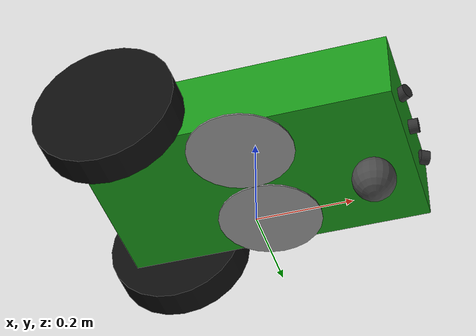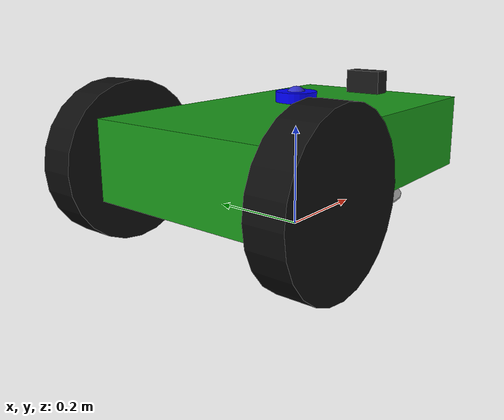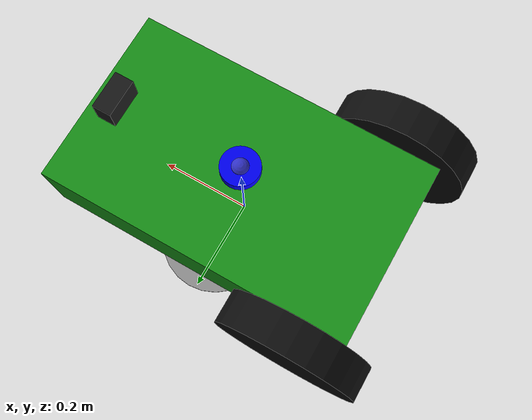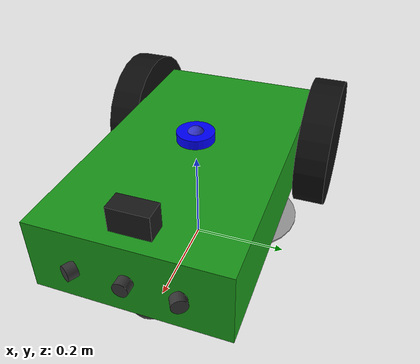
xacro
<?xml version="1.0"?>
<robot name="mower_gz" xmlns:xacro="http://www.ros.org/wiki/xacro">
  <!-- Include il modello del robot (geometria, giunti, sensori) -->
  <xacro:include filename="mower.urdf.xacro"/>
  <!-- Aggiunge i plugin di controllo e sensori per gz -->
  <xacro:include filename="gz_control.xacro"/>
</robot>

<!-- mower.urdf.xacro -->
<robot xmlns:xacro="http://ros.org/wiki/xacro" name="mower">
  <!-- Parameters -->
  <xacro:property name="wheel_radius" value="0.15"/>
  <xacro:property name="wheel_width" value="0.07"/>
  <xacro:property name="wheel_separation" value="0.455"/>
  <xacro:property name="rear_wheel_offset" value="0.085"/>
  <xacro:property name="base_length" value="0.65"/>
  <xacro:property name="base_width" value="0.38"/>
  <xacro:property name="base_height" value="0.15"/>
  <xacro:property name="ground_clearance" value="0.09"/>
  <xacro:property name="front_wheel_radius" value="0.045"/>
  <xacro:property name="front_wheel_offset" value="0.08"/>
  <!-- mower blades (piatti di taglio) -->
  <xacro:property name="blade_radius" value="0.11"/>
  <xacro:property name="blade_thickness" value="0.003"/>
  <xacro:property name="blade_offset_y" value="0.11"/>
  <xacro:property name="blade_offset_x" value="0.0"/>
  <!-- sim toggle -->
  <xacro:property name="use_sim" value="false"/>
  <!-- ros2_control -->
  <xacro:property name="port" value="/dev/ttyAMA0"/>
  <xacro:property name="baud" value="230400"/>
  <ros2_control name="MowerHardware" type="system">
    <hardware>
      <plugin>pico_control_hardware/PicoSystemHardware</plugin>
      <param name="port">${port}</param>
      <param name="baud">${baud}</param>
      <param name="timeout">1000</param>
    </hardware>
    <joint name="left_wheel_joint">
      <command_interface name="velocity"/>
      <state_interface name="position"/>
      <state_interface name="velocity"/>
    </joint>
    <joint name="right_wheel_joint">
      <command_interface name="velocity"/>
      <state_interface name="position"/>
      <state_interface name="velocity"/>
    </joint>
  </ros2_control>

  <!-- Inertial helper -->
  <xacro:macro name="inertial_box" params="mass x y z">
    <inertial>
      <mass value="${mass}"/>
      <origin xyz="0 0 0" rpy="0 0 0"/>
      <inertia ixx="${mass/12.0 * (y*y + z*z)}" iyy="${mass/12.0 * (x*x + z*z)}" izz="${mass/12.0 * (x*x + y*y)}" ixy="0" ixz="0" iyz="0"/>
    </inertial>
  </xacro:macro>

  <!-- Base link (empty) and chassis separated to avoid KDL root inertia warning -->
  <link name="base_link"/>

  <joint name="chassis_joint" type="fixed">
    <parent link="base_link"/>
    <child link="chassis"/>
    <origin xyz="0 0 ${ground_clearance + base_height/2.0}" rpy="0 0 0"/>
  </joint>

  <link name="chassis">
    <visual>
      <origin xyz="0 0 0" rpy="0 0 0"/>
      <geometry>
        <box size="${base_length} ${base_width} ${base_height}"/>
      </geometry>
      <material name="green"><color rgba="0.1 0.6 0.1 1.0"/></material>
    </visual>
    <collision>
      <origin xyz="0 0 0" rpy="0 0 0"/>
      <geometry>
        <box size="${base_length} ${base_width} ${base_height}"/>
      </geometry>
    </collision>
    <xacro:inertial_box mass="10.0" x="${base_length}" y="${base_width}" z="${base_height}"/>
{{ ... }}
  </link>

  <!-- IMU -->
  <link name="imu_link">
    <visual>
      <origin xyz="0 0 ${ground_clearance + base_height + 0.02}" rpy="0 0 0"/>
      <geometry>
        <sphere radius="0.02"/>
      </geometry>
      <material name="blue"><color rgba="0.2 0.2 0.8 1.0"/></material>
    </visual>
    <collision>
      <origin xyz="0 0 ${ground_clearance + base_height + 0.02}" rpy="0 0 0"/>
      <geometry>
        <sphere radius="0.02"/>
      </geometry>
    </collision>
    <inertial>
      <mass value="0.1"/>
      <origin xyz="0 0 ${ground_clearance + base_height + 0.02}" rpy="0 0 0"/>
      <inertia ixx="1e-4" iyy="1e-4" izz="1e-4" ixy="0" ixz="0" iyz="0"/>
    </inertial>
  </link>
  <joint name="imu_joint" type="fixed">
    <parent link="base_link"/>
    <child link="imu_link"/>
    <origin xyz="0 0 0" rpy="0 0 0"/>
  </joint>

  <!-- Wheels -->
  <link name="left_wheel">
    <visual>
      <origin xyz="0 0 0" rpy="-${pi/2} 0 0"/>
      <geometry>
        <cylinder radius="${wheel_radius}" length="${wheel_width}"/>
      </geometry>
      <material name="black">
        <color rgba="0.05 0.05 0.05 1.0"/>
      </material>
    </visual>
    <collision>
      <origin xyz="0 0 0" rpy="-${pi/2} 0 0"/>
      <geometry>
        <cylinder radius="${wheel_radius}" length="${wheel_width}"/>
      </geometry>
    </collision>
    <inertial>
      <mass value="1.0"/>
      <origin xyz="0 0 0" rpy="0 0 0"/>
      <inertia ixx="0.01" iyy="0.01" izz="0.01" ixy="0" ixz="0" iyz="0"/>
    </inertial>
  </link>

  <link name="right_wheel">
    <visual>
      <origin xyz="0 0 0" rpy="${pi/2} 0 0"/>
      <geometry>
        <cylinder radius="${wheel_radius}" length="${wheel_width}"/>
      </geometry>
      <material name="black"/>
    </visual>
    <collision>
      <origin xyz="0 0 0" rpy="${pi/2} 0 0"/>
      <geometry>
        <cylinder radius="${wheel_radius}" length="${wheel_width}"/>
      </geometry>
    </collision>
    <inertial>
      <mass value="1.0"/>
      <origin xyz="0 0 0" rpy="0 0 0"/>
      <inertia ixx="0.01" iyy="0.01" izz="0.01" ixy="0" ixz="0" iyz="0"/>
    </inertial>
  </link>

  <joint name="left_wheel_joint" type="continuous">
    <parent link="base_link"/>
    <child link="left_wheel"/>
    <origin xyz="-${base_length/2 - rear_wheel_offset} ${wheel_separation/2.0} ${wheel_radius}" rpy="0 0 0"/>
    <axis xyz="0 1 0"/>
  </joint>

  <joint name="right_wheel_joint" type="continuous">
    <parent link="base_link"/>
    <child link="right_wheel"/>
    <origin xyz="-${base_length/2 - rear_wheel_offset} ${-wheel_separation/2.0} ${wheel_radius}" rpy="0 0 0"/>
    <axis xyz="0 1 0"/>
  </joint>

  <!-- Front caster wheel -->
  <joint name="front_wheel_joint" type="fixed">
    <parent link="base_link"/>
    <child link="front_wheel"/>
    <origin xyz="${base_length/2 - front_wheel_offset} 0 ${front_wheel_radius}" rpy="0 0 0"/>
  </joint>

  <link name="front_wheel">
    <visual>
      <origin xyz="0 0 0" rpy="0 0 0"/>
      <geometry>
        <sphere radius="${front_wheel_radius}"/>
      </geometry>
      <material name="gray"><color rgba="0.3 0.3 0.3 1.0"/></material>
    </visual>
    <collision>
      <origin xyz="0 0 0" rpy="0 0 0"/>
      <geometry>
        <sphere radius="${front_wheel_radius}"/>
      </geometry>
    </collision>
    <inertial>
      <mass value="0.5"/>
      <origin xyz="0 0 0" rpy="0 0 0"/>
      <inertia ixx="${0.4 * 0.5 * front_wheel_radius * front_wheel_radius}"
               iyy="${0.4 * 0.5 * front_wheel_radius * front_wheel_radius}"
               izz="${0.4 * 0.5 * front_wheel_radius * front_wheel_radius}"
               ixy="0" ixz="0" iyz="0"/>
    </inertial>
  </link>

  <!-- Gazebo friction for caster (sim only) -->
  <xacro:if value="${use_sim}">
  <gazebo reference="front_wheel">
    <mu1>0.1</mu1>
    <mu2>0.1</mu2>
  </gazebo>
  </xacro:if>

  <!-- Gazebo plugins (only in sim) -->
  <xacro:if value="${use_sim}">
    <gazebo>
      <plugin name="diff_drive" filename="libgazebo_ros_diff_drive.so">
        <ros>
          <namespace>/</namespace>
          <remapping>cmd_vel:=/cmd_vel</remapping>
          <remapping>odom:=/odometry/raw</remapping>
        </ros>
        <update_rate>50</update_rate>
        <left_joint>left_wheel_joint</left_joint>
        <right_joint>right_wheel_joint</right_joint>
        <wheel_separation>${wheel_separation}</wheel_separation>
        <wheel_diameter>${2*wheel_radius}</wheel_diameter>
        <max_wheel_torque>5</max_wheel_torque>
        <max_wheel_acceleration>3</max_wheel_acceleration>
        <publish_tf>true</publish_tf>
        <publish_odom>true</publish_odom>
        <odometry_frame>odom</odometry_frame>
        <robot_base_frame>base_link</robot_base_frame>
      </plugin>
    </gazebo>
  </xacro:if>

  <!-- IMU sensor plugin (sim only) -->
  <xacro:if value="${use_sim}">
  <gazebo reference="imu_link">
    <gravity>true</gravity>
    <sensor name="mower_imu" type="imu">
      <always_on>true</always_on>
      <update_rate>100</update_rate>
      <imu>
        <angular_velocity>
          <x>
            <noise type="gaussian">
              <mean>0.0</mean>
              <stddev>0.001</stddev>
            </noise>
          </x>
          <y>
            <noise type="gaussian"><mean>0.0</mean><stddev>0.001</stddev></noise>
          </y>
          <z>
            <noise type="gaussian"><mean>0.0</mean><stddev>0.001</stddev></noise>
          </z>
        </angular_velocity>
        <linear_acceleration>
          <x>
            <noise type="gaussian"><mean>0.0</mean><stddev>0.01</stddev></noise>
          </x>
          <y>
            <noise type="gaussian"><mean>0.0</mean><stddev>0.01</stddev></noise>
          </y>
          <z>
            <noise type="gaussian"><mean>0.0</mean><stddev>0.01</stddev></noise>
          </z>
        </linear_acceleration>
      </imu>
      <plugin name="imu_plugin" filename="libgazebo_ros_imu_sensor.so">
        <ros>
          <namespace>/</namespace>
          <remapping>~/out:=/sensors/imu</remapping>
        </ros>
        <frame_name>imu_link</frame_name>
      </plugin>
    </sensor>
  </gazebo>
  </xacro:if>

  <!-- Sonar frontali: LEFT -->
  <joint name="sonar_left_joint" type="fixed">
    <parent link="chassis"/>
    <child link="sonar_left_frame"/>
    <origin xyz="${base_length/2 + 0.01} 0.10 0.0" rpy="0 0 ${pi/6}"/>
  </joint>

  <link name="sonar_left_frame">
    <visual>
      <origin xyz="0 0 0" rpy="0 ${pi/2} 0"/>
      <geometry>
        <cylinder length="0.02" radius="0.015"/>
      </geometry>
      <material name="sonar_material">
        <color rgba="0.2 0.2 0.2 1.0"/>
      </material>
    </visual>
    <collision>
      <origin xyz="0 0 0" rpy="0 ${pi/2} 0"/>
      <geometry>
        <cylinder length="0.02" radius="0.015"/>
      </geometry>
    </collision>
    <inertial>
      <mass value="0.05"/>
      <origin xyz="0 0 0" rpy="0 0 0"/>
      <inertia ixx="1e-5" iyy="1e-5" izz="1e-5" ixy="0" ixz="0" iyz="0"/>
    </inertial>
  </link>

  <xacro:if value="${use_sim}">
  <gazebo reference="sonar_left_frame">
    <sensor name="sonar_left" type="gpu_lidar">
      <always_on>true</always_on>
      <visualize>true</visualize>
      <update_rate>10</update_rate>
      <topic>/sonar/left/scan</topic>
      <gz_frame_id>sonar_left_frame</gz_frame_id>
      <lidar>
        <scan>
          <horizontal>
            <samples>1</samples>
            <resolution>1</resolution>
            <min_angle>0</min_angle>
            <max_angle>0</max_angle>
          </horizontal>
          <vertical>
            <samples>1</samples>
            <resolution>1</resolution>
            <min_angle>0</min_angle>
            <max_angle>0</max_angle>
          </vertical>
        </scan>
        <range>
          <min>0.02</min>
          <max>3.0</max>
          <resolution>0.01</resolution>
        </range>
        <noise>
          <type>gaussian</type>
          <mean>0.0</mean>
          <stddev>0.01</stddev>
        </noise>
      </lidar>
    </sensor>
  </gazebo>
  </xacro:if>

  <!-- Sonar frontali: CENTER -->
  <joint name="sonar_center_joint" type="fixed">
    <parent link="chassis"/>
    <child link="sonar_center_frame"/>
    <origin xyz="${base_length/2 + 0.01} 0.0 0.0" rpy="0 0 0"/>
  </joint>

  <link name="sonar_center_frame">
    <visual>
      <origin xyz="0 0 0" rpy="0 ${pi/2} 0"/>
      <geometry>
        <cylinder length="0.02" radius="0.015"/>
      </geometry>
      <material name="sonar_material"/>
    </visual>
    <collision>
      <origin xyz="0 0 0" rpy="0 ${pi/2} 0"/>
      <geometry>
        <cylinder length="0.02" radius="0.015"/>
      </geometry>
    </collision>
    <inertial>
      <mass value="0.05"/>
      <origin xyz="0 0 0" rpy="0 0 0"/>
      <inertia ixx="1e-5" iyy="1e-5" izz="1e-5" ixy="0" ixz="0" iyz="0"/>
    </inertial>
  </link>

  <xacro:if value="${use_sim}">
  <gazebo reference="sonar_center_frame">
    <sensor name="sonar_center" type="gpu_lidar">
      <always_on>true</always_on>
      <visualize>true</visualize>
      <update_rate>10</update_rate>
      <topic>/sonar/center/scan</topic>
      <gz_frame_id>sonar_center_frame</gz_frame_id>
      <lidar>
        <scan>
          <horizontal>
            <samples>1</samples>
            <resolution>1</resolution>
            <min_angle>0</min_angle>
            <max_angle>0</max_angle>
          </horizontal>
          <vertical>
            <samples>1</samples>
            <resolution>1</resolution>
            <min_angle>0</min_angle>
            <max_angle>0</max_angle>
          </vertical>
        </scan>
        <range>
          <min>0.02</min>
          <max>3.0</max>
          <resolution>0.01</resolution>
        </range>
        <noise>
          <type>gaussian</type>
          <mean>0.0</mean>
          <stddev>0.01</stddev>
        </noise>
      </lidar>
    </sensor>
  </gazebo>
  </xacro:if>

  <!-- Sonar frontali: RIGHT -->
  <joint name="sonar_right_joint" type="fixed">
    <parent link="chassis"/>
    <child link="sonar_right_frame"/>
    <origin xyz="${base_length/2 + 0.01} -0.10 0.0" rpy="0 0 -${pi/6}"/>
  </joint>

  <link name="sonar_right_frame">
    <visual>
      <origin xyz="0 0 0" rpy="0 ${pi/2} 0"/>
      <geometry>
        <cylinder length="0.02" radius="0.015"/>
      </geometry>
      <material name="sonar_material"/>
    </visual>
    <collision>
      <origin xyz="0 0 0" rpy="0 ${pi/2} 0"/>
      <geometry>
        <cylinder length="0.02" radius="0.015"/>
      </geometry>
    </collision>
    <inertial>
      <mass value="0.05"/>
      <origin xyz="0 0 0" rpy="0 0 0"/>
      <inertia ixx="1e-5" iyy="1e-5" izz="1e-5" ixy="0" ixz="0" iyz="0"/>
    </inertial>
  </link>

  <xacro:if value="${use_sim}">
  <gazebo reference="sonar_right_frame">
    <sensor name="sonar_right" type="gpu_lidar">
      <always_on>true</always_on>
      <visualize>true</visualize>
      <update_rate>10</update_rate>
      <topic>/sonar/right/scan</topic>
      <gz_frame_id>sonar_right_frame</gz_frame_id>
      <lidar>
        <scan>
          <horizontal>
            <samples>1</samples>
            <resolution>1</resolution>
            <min_angle>0</min_angle>
            <max_angle>0</max_angle>
          </horizontal>
          <vertical>
            <samples>1</samples>
            <resolution>1</resolution>
            <min_angle>0</min_angle>
            <max_angle>0</max_angle>
          </vertical>
        </scan>
        <range>
          <min>0.02</min>
          <max>3.0</max>
          <resolution>0.01</resolution>
        </range>
        <noise>
          <type>gaussian</type>
          <mean>0.0</mean>
          <stddev>0.01</stddev>
        </noise>
      </lidar>
    </sensor>
  </gazebo>
  </xacro:if>

  <!-- GPS sensor on top of chassis -->
  <joint name="gps_joint" type="fixed">
    <parent link="chassis"/>
    <child link="gps_frame"/>
    <origin xyz="0 0 ${base_height/2.0 + 0.02}" rpy="0 0 0"/>
  </joint>

  <link name="gps_frame">
    <visual>
      <origin xyz="0 0 0" rpy="0 0 0"/>
      <geometry>
        <cylinder length="0.02" radius="0.04"/>
      </geometry>
      <material name="gps_material"><color rgba="0.0 0.0 1.0 1.0"/></material>
    </visual>
    <collision>
      <origin xyz="0 0 0" rpy="0 0 0"/>
      <geometry>
        <cylinder length="0.02" radius="0.04"/>
      </geometry>
    </collision>
    <inertial>
      <mass value="0.2"/>
      <origin xyz="0 0 0" rpy="0 0 0"/>
      <!-- Solid cylinder inertia: Ixx=Iyy=1/12*m*(3r^2 + L^2), Izz=1/2*m*r^2 -->
      <inertia ixx="${(1.0/12.0)*0.2*(3*0.04*0.04 + 0.02*0.02)}"
               iyy="${(1.0/12.0)*0.2*(3*0.04*0.04 + 0.02*0.02)}"
               izz="${0.5*0.2*0.04*0.04}"
               ixy="0" ixz="0" iyz="0"/>
    </inertial>
  </link>

  <xacro:if value="${use_sim}">
  <gazebo reference="gps_frame">
    <sensor name="gps" type="navsat">
      <always_on>true</always_on>
      <update_rate>10</update_rate>
      <topic>/gps/fix</topic>
      <gz_frame_id>gps_frame</gz_frame_id>
      <navsat>
        <position_sensing>
          <horizontal>
            <noise type="gaussian"><mean>0.0</mean><stddev>0.5</stddev></noise>
          </horizontal>
          <vertical>
            <noise type="gaussian"><mean>0.0</mean><stddev>1.0</stddev></noise>
          </vertical>
        </position_sensing>
        <velocity_sensing>
          <horizontal>
            <noise type="gaussian"><mean>0.0</mean><stddev>0.1</stddev></noise>
          </horizontal>
          <vertical>
            <noise type="gaussian"><mean>0.0</mean><stddev>0.2</stddev></noise>
          </vertical>
        </velocity_sensing>
      </navsat>
    </sensor>
  </gazebo>
  </xacro:if>

  <!-- Camera sensor on front of chassis -->
  <joint name="camera_joint" type="fixed">
    <parent link="chassis"/>
    <child link="camera_frame"/>
    <origin xyz="${base_length/2 - 0.05} 0 ${base_height/2.0 + 0.02}" rpy="0 0 0"/>
  </joint>

  <link name="camera_frame">
    <visual>
      <origin xyz="0 0 0" rpy="0 0 0"/>
      <geometry>
        <box size="0.04 0.08 0.06"/>
      </geometry>
      <material name="camera_material"><color rgba="0.1 0.1 0.1 1.0"/></material>
    </visual>
    <collision>
      <origin xyz="0 0 0" rpy="0 0 0"/>
      <geometry>
        <box size="0.04 0.08 0.06"/>
      </geometry>
    </collision>
    <xacro:inertial_box mass="0.1" x="0.04" y="0.08" z="0.06"/>
  </link>

  <xacro:if value="${use_sim}">
  <gazebo reference="camera_frame">
    <sensor name="camera" type="camera">
      <pose>0 0 0 0 0 0</pose>
      <topic>/camera/image</topic>
      <always_on>true</always_on>
      <visualize>true</visualize>
      <update_rate>10</update_rate>
      <camera>
        <horizontal_fov>1.57</horizontal_fov>
        <image>
          <width>640</width>
          <height>480</height>
          <format>R8G8B8</format>
        </image>
        <clip>
          <near>0.1</near>
          <far>100</far>
        </clip>
        <info_topic>/camera/camera_info</info_topic>
      </camera>
      <frame_id>camera_frame</frame_id>
    </sensor>
  </gazebo>
  </xacro:if>

  <!-- Cutting Blades (two discs under chassis) [moved to end] -->
  <joint name="blade_left_joint" type="fixed">
    <parent link="chassis"/>
    <!-- Place at bottom of chassis: z = -(base_height/2 + blade_thickness/2) -->
    <child link="blade_left"/>
    <origin xyz="${blade_offset_x} ${blade_offset_y} -${base_height/2.0 + blade_thickness/2.0}" rpy="0 0 0"/>
  </joint>

  <link name="blade_left">
    <visual>
      <origin xyz="0 0 0" rpy="0 0 0"/>
      <geometry>
        <cylinder radius="${blade_radius}" length="${blade_thickness}"/>
      </geometry>
      <material name="blade_mat"><color rgba="0.6 0.6 0.6 1.0"/></material>
    </visual>
    <collision>
      <origin xyz="0 0 0" rpy="0 0 0"/>
      <geometry>
        <cylinder radius="${blade_radius}" length="${blade_thickness}"/>
      </geometry>
    </collision>
    <inertial>
      <mass value="0.2"/>
      <origin xyz="0 0 0" rpy="0 0 0"/>
      <inertia ixx="1e-4" iyy="1e-4" izz="1e-4" ixy="0" ixz="0" iyz="0"/>
    </inertial>
  </link>

  <joint name="blade_right_joint" type="fixed">
    <parent link="chassis"/>
    <child link="blade_right"/>
    <origin xyz="${blade_offset_x} -${blade_offset_y} -${base_height/2.0 + blade_thickness/2.0}" rpy="0 0 0"/>
  </joint>

  <link name="blade_right">
    <visual>
      <origin xyz="0 0 0" rpy="0 0 0"/>
      <geometry>
        <cylinder radius="${blade_radius}" length="${blade_thickness}"/>
      </geometry>
      <material name="blade_mat"/>
    </visual>
    <collision>
      <origin xyz="0 0 0" rpy="0 0 0"/>
      <geometry>
        <cylinder radius="${blade_radius}" length="${blade_thickness}"/>
      </geometry>
    </collision>
    <inertial>
      <mass value="0.2"/>
      <origin xyz="0 0 0" rpy="0 0 0"/>
      <inertia ixx="1e-4" iyy="1e-4" izz="1e-4" ixy="0" ixz="0" iyz="0"/>
    </inertial>
  </link>

</robot>
